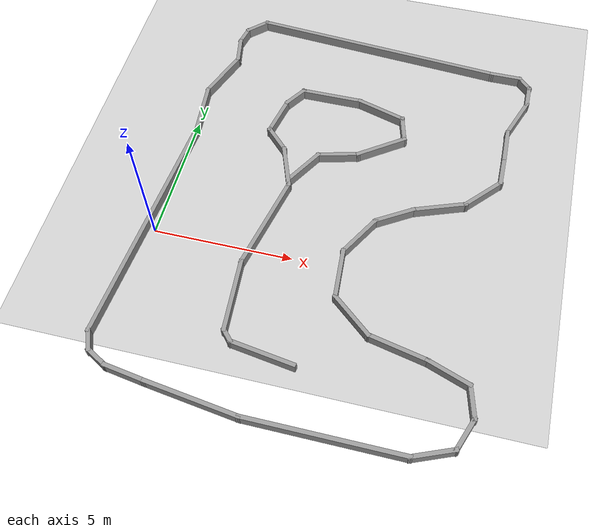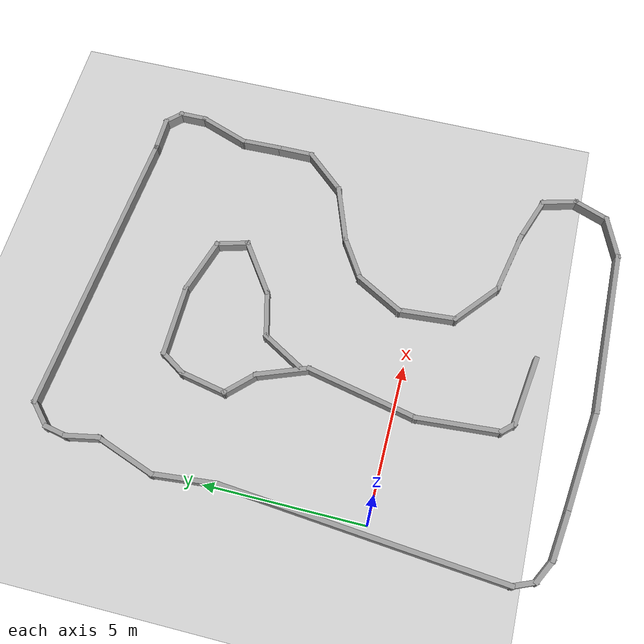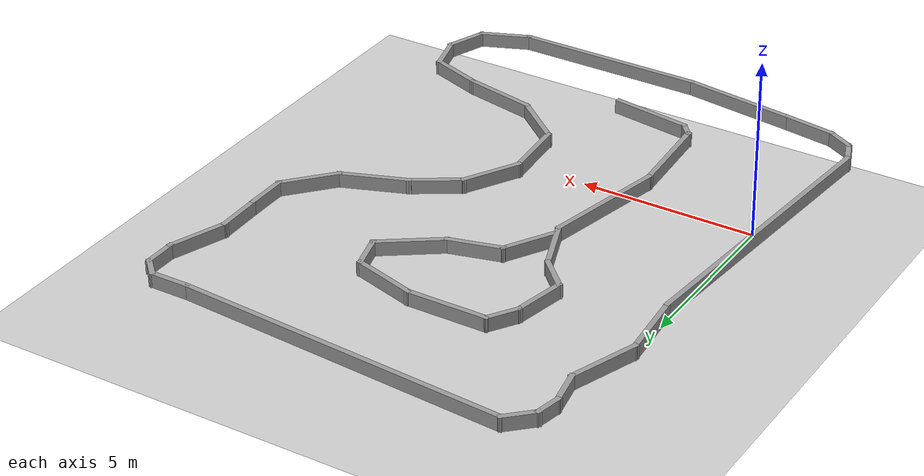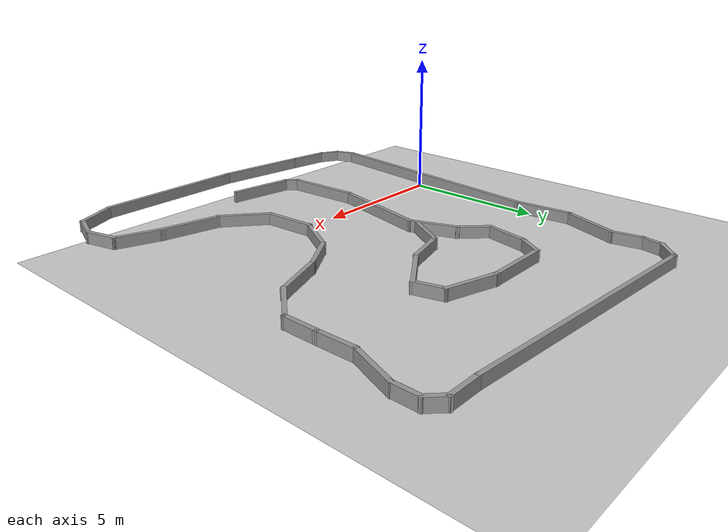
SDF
<?xml version="1.0"?>
<sdf version="1.4">
  <world name="carollo_track_v0">
    <include>
      <uri>model://selfie_description/models/f1_tenth_easy_map</uri>
      <name>track</name>
      <pose>5.74 2.33 0 0 0 0</pose>
    </include>
    <include>
      <uri>model://sun</uri>
      <pose>0 0 10 0 0 0</pose>
      <name>sun</name>
    </include>

    <include>
      <uri>model://selfie_description/models/carollo_track_v1</uri>
      <name>track</name>
      <pose>3.78 4.56 0 0 0 0</pose>
    </include>
  </world>
</sdf>

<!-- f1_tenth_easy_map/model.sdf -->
<sdf version='1.6'>
  <model name='map_low'>
    <pose frame=''>-0.64888 -0.59988 0 0 -0 0</pose>
    <link name='Wall_0'>
      <collision name='Wall_0_Collision'>
        <geometry>
          <box>
            <size>1 0.15 0.4</size>
          </box>
        </geometry>
        <pose frame=''>0 0 0.2 0 -0 0</pose>
      </collision>
      <visual name='Wall_0_Visual'>
        <pose frame=''>0 0 0.2 0 -0 0</pose>
        <geometry>
          <box>
            <size>1 0.15 0.4</size>
          </box>
        </geometry>
        <material>
          <script>
            <uri>file://media/materials/scripts/gazebo.material</uri>
            <name>Gazebo/Grey</name>
          </script>
          <ambient>1 1 1 1</ambient>
        </material>
        <meta>
          <layer>0</layer>
        </meta>
      </visual>
      <pose frame=''>6.41988 6.72488 0 0 -0 1.5708</pose>
    </link>
    <link name='Wall_1'>
      <collision name='Wall_1_Collision'>
        <geometry>
          <box>
            <size>0.75 0.15 0.4</size>
          </box>
        </geometry>
        <pose frame=''>0 0 0.2 0 -0 0</pose>
      </collision>
      <visual name='Wall_1_Visual'>
        <pose frame=''>0 0 0.2 0 -0 0</pose>
        <geometry>
          <box>
            <size>0.75 0.15 0.4</size>
          </box>
        </geometry>
        <material>
          <script>
            <uri>file://media/materials/scripts/gazebo.material</uri>
            <name>Gazebo/Grey</name>
          </script>
          <ambient>1 1 1 1</ambient>
        </material>
        <meta>
          <layer>0</layer>
        </meta>
      </visual>
      <pose frame=''>6.20788 7.36188 0 0 -0 2.35619</pose>
    </link>
    <link name='Wall_10'>
      <collision name='Wall_10_Collision'>
        <geometry>
          <box>
            <size>0.841605 0.15 0.4</size>
          </box>
        </geometry>
        <pose frame=''>0 0 0.2 0 -0 0</pose>
      </collision>
      <visual name='Wall_10_Visual'>
        <pose frame=''>0 0 0.2 0 -0 0</pose>
        <geometry>
          <box>
            <size>0.841605 0.15 0.4</size>
          </box>
        </geometry>
        <material>
          <script>
            <uri>file://media/materials/scripts/gazebo.material</uri>
            <name>Gazebo/Grey</name>
          </script>
          <ambient>1 1 1 1</ambient>
        </material>
        <meta>
          <layer>0</layer>
        </meta>
      </visual>
      <pose frame=''>-6.29512 -6.94662 0 0 0 -1.17634</pose>
    </link>
    <link name='Wall_11'>
      <collision name='Wall_11_Collision'>
        <geometry>
          <box>
            <size>0.935494 0.15 0.4</size>
          </box>
        </geometry>
        <pose frame=''>0 0 0.2 0 -0 0</pose>
      </collision>
      <visual name='Wall_11_Visual'>
        <pose frame=''>0 0 0.2 0 -0 0</pose>
        <geometry>
          <box>
            <size>0.935494 0.15 0.4</size>
          </box>
        </geometry>
        <material>
          <script>
            <uri>file://media/materials/scripts/gazebo.material</uri>
            <name>Gazebo/Grey</name>
          </script>
          <ambient>1 1 1 1</ambient>
        </material>
        <meta>
          <layer>0</layer>
        </meta>
      </visual>
      <pose frame=''>-5.81612 -7.45212 0 0 0 -0.493252</pose>
    </link>
    <link name='Wall_12'>
      <collision name='Wall_12_Collision'>
        <geometry>
          <box>
            <size>1.57578 0.15 0.4</size>
          </box>
        </geometry>
        <pose frame=''>0 0 0.2 0 -0 0</pose>
      </collision>
      <visual name='Wall_12_Visual'>
        <pose frame=''>0 0 0.2 0 -0 0</pose>
        <geometry>
          <box>
            <size>1.57578 0.15 0.4</size>
          </box>
        </geometry>
        <material>
          <script>
            <uri>file://media/materials/scripts/gazebo.material</uri>
            <name>Gazebo/Grey</name>
          </script>
          <ambient>1 1 1 1</ambient>
        </material>
        <meta>
          <layer>0</layer>
        </meta>
      </visual>
      <pose frame=''>-4.76562 -7.74462 0 0 0 -0.150035</pose>
    </link>
    <link name='Wall_13'>
      <collision name='Wall_13_Collision'>
        <geometry>
          <box>
            <size>3.39664 0.15 0.4</size>
          </box>
        </geometry>
        <pose frame=''>0 0 0.2 0 -0 0</pose>
      </collision>
      <visual name='Wall_13_Visual'>
        <pose frame=''>0 0 0.2 0 -0 0</pose>
        <geometry>
          <box>
            <size>3.39664 0.15 0.4</size>
          </box>
        </geometry>
        <material>
          <script>
            <uri>file://media/materials/scripts/gazebo.material</uri>
            <name>Gazebo/Grey</name>
          </script>
          <ambient>1 1 1 1</ambient>
        </material>
        <meta>
          <layer>0</layer>
        </meta>
      </visual>
      <pose frame=''>-2.45162 -8.06412 0 0 0 -0.131575</pose>
    </link>
    <link name='Wall_14'>
      <collision name='Wall_14_Collision'>
        <geometry>
          <box>
            <size>5.49664 0.15 0.4</size>
          </box>
        </geometry>
        <pose frame=''>0 0 0.2 0 -0 0</pose>
      </collision>
      <visual name='Wall_14_Visual'>
        <pose frame=''>0 0 0.2 0 -0 0</pose>
        <geometry>
          <box>
            <size>5.49664 0.15 0.4</size>
          </box>
        </geometry>
        <material>
          <script>
            <uri>file://media/materials/scripts/gazebo.material</uri>
            <name>Gazebo/Grey</name>
          </script>
          <ambient>1 1 1 1</ambient>
        </material>
        <meta>
          <layer>0</layer>
        </meta>
      </visual>
      <pose frame=''>1.83138 -8.27712 0 0 -0 0</pose>
    </link>
    <link name='Wall_15'>
      <collision name='Wall_15_Collision'>
        <geometry>
          <box>
            <size>1.5578 0.15 0.4</size>
          </box>
        </geometry>
        <pose frame=''>0 0 0.2 0 -0 0</pose>
      </collision>
      <visual name='Wall_15_Visual'>
        <pose frame=''>0 0 0.2 0 -0 0</pose>
        <geometry>
          <box>
            <size>1.5578 0.15 0.4</size>
          </box>
        </geometry>
        <material>
          <script>
            <uri>file://media/materials/scripts/gazebo.material</uri>
            <name>Gazebo/Grey</name>
          </script>
          <ambient>1 1 1 1</ambient>
        </material>
        <meta>
          <layer>0</layer>
        </meta>
      </visual>
      <pose frame=''>5.15638 -8.01112 0 0 -0 0.387631</pose>
    </link>
    <link name='Wall_16'>
      <collision name='Wall_16_Collision'>
        <geometry>
          <box>
            <size>1.28636 0.15 0.4</size>
          </box>
        </geometry>
        <pose frame=''>0 0 0.2 0 -0 0</pose>
      </collision>
      <visual name='Wall_16_Visual'>
        <pose frame=''>0 0 0.2 0 -0 0</pose>
        <geometry>
          <box>
            <size>1.28636 0.15 0.4</size>
          </box>
        </geometry>
        <material>
          <script>
            <uri>file://media/materials/scripts/gazebo.material</uri>
            <name>Gazebo/Grey</name>
          </script>
          <ambient>1 1 1 1</ambient>
        </material>
        <meta>
          <layer>0</layer>
        </meta>
      </visual>
      <pose frame=''>6.00738 -7.21312 0 0 -0 1.21203</pose>
    </link>
    <link name='Wall_17'>
      <collision name='Wall_17_Collision'>
        <geometry>
          <box>
            <size>1.25 0.15 0.4</size>
          </box>
        </geometry>
        <pose frame=''>0 0 0.2 0 -0 0</pose>
      </collision>
      <visual name='Wall_17_Visual'>
        <pose frame=''>0 0 0.2 0 -0 0</pose>
        <geometry>
          <box>
            <size>1.25 0.15 0.4</size>
          </box>
        </geometry>
        <material>
          <script>
            <uri>file://media/materials/scripts/gazebo.material</uri>
            <name>Gazebo/Grey</name>
          </script>
          <ambient>1 1 1 1</ambient>
        </material>
        <meta>
          <layer>0</layer>
        </meta>
      </visual>
      <pose frame=''>6.06438 -6.14962 0 0 -0 1.83275</pose>
    </link>
    <link name='Wall_18'>
      <collision name='Wall_18_Collision'>
        <geometry>
          <box>
            <size>1.68075 0.15 0.4</size>
          </box>
        </geometry>
        <pose frame=''>0 0 0.2 0 -0 0</pose>
      </collision>
      <visual name='Wall_18_Visual'>
        <pose frame=''>0 0 0.2 0 -0 0</pose>
        <geometry>
          <box>
            <size>1.68075 0.15 0.4</size>
          </box>
        </geometry>
        <material>
          <script>
            <uri>file://media/materials/scripts/gazebo.material</uri>
            <name>Gazebo/Grey</name>
          </script>
          <ambient>1 1 1 1</ambient>
        </material>
        <meta>
          <layer>0</layer>
        </meta>
      </visual>
      <pose frame=''>5.19988 -5.36462 0 0 -0 2.80393</pose>
    </link>
    <link name='Wall_19'>
      <collision name='Wall_19_Collision'>
        <geometry>
          <box>
            <size>2.21585 0.15 0.4</size>
          </box>
        </geometry>
        <pose frame=''>0 0 0.2 0 -0 0</pose>
      </collision>
      <visual name='Wall_19_Visual'>
        <pose frame=''>0 0 0.2 0 -0 0</pose>
        <geometry>
          <box>
            <size>2.21585 0.15 0.4</size>
          </box>
        </geometry>
        <material>
          <script>
            <uri>file://media/materials/scripts/gazebo.material</uri>
            <name>Gazebo/Grey</name>
          </script>
          <ambient>1 1 1 1</ambient>
        </material>
        <meta>
          <layer>0</layer>
        </meta>
      </visual>
      <pose frame=''>3.46688 -4.89862 0 0 -0 2.93442</pose>
    </link>
    <link name='Wall_2'>
      <collision name='Wall_2_Collision'>
        <geometry>
          <box>
            <size>1.25 0.15 0.4</size>
          </box>
        </geometry>
        <pose frame=''>0 0 0.2 0 -0 0</pose>
      </collision>
      <visual name='Wall_2_Visual'>
        <pose frame=''>0 0 0.2 0 -0 0</pose>
        <geometry>
          <box>
            <size>1.25 0.15 0.4</size>
          </box>
        </geometry>
        <material>
          <script>
            <uri>file://media/materials/scripts/gazebo.material</uri>
            <name>Gazebo/Grey</name>
          </script>
          <ambient>1 1 1 1</ambient>
        </material>
        <meta>
          <layer>0</layer>
        </meta>
      </visual>
      <pose frame=''>5.44588 7.57388 0 0 -0 3.14159</pose>
    </link>
    <link name='Wall_20'>
      <collision name='Wall_20_Collision'>
        <geometry>
          <box>
            <size>1.90743 0.15 0.4</size>
          </box>
        </geometry>
        <pose frame=''>0 0 0.2 0 -0 0</pose>
      </collision>
      <visual name='Wall_20_Visual'>
        <pose frame=''>0 0 0.2 0 -0 0</pose>
        <geometry>
          <box>
            <size>1.90743 0.15 0.4</size>
          </box>
        </geometry>
        <material>
          <script>
            <uri>file://media/materials/scripts/gazebo.material</uri>
            <name>Gazebo/Grey</name>
          </script>
          <ambient>1 1 1 1</ambient>
        </material>
        <meta>
          <layer>0</layer>
        </meta>
      </visual>
      <pose frame=''>1.77788 -4.12712 0 0 -0 2.4521</pose>
    </link>
    <link name='Wall_21'>
      <collision name='Wall_21_Collision'>
        <geometry>
          <box>
            <size>1.93717 0.15 0.4</size>
          </box>
        </geometry>
        <pose frame=''>0 0 0.2 0 -0 0</pose>
      </collision>
      <visual name='Wall_21_Visual'>
        <pose frame=''>0 0 0.2 0 -0 0</pose>
        <geometry>
          <box>
            <size>1.93717 0.15 0.4</size>
          </box>
        </geometry>
        <material>
          <script>
            <uri>file://media/materials/scripts/gazebo.material</uri>
            <name>Gazebo/Grey</name>
          </script>
          <ambient>1 1 1 1</ambient>
        </material>
        <meta>
          <layer>0</layer>
        </meta>
      </visual>
      <pose frame=''>1.03338 -2.67712 0 0 -0 1.64529</pose>
    </link>
    <link name='Wall_22'>
      <collision name='Wall_22_Collision'>
        <geometry>
          <box>
            <size>1.8294 0.15 0.4</size>
          </box>
        </geometry>
        <pose frame=''>0 0 0.2 0 -0 0</pose>
      </collision>
      <visual name='Wall_22_Visual'>
        <pose frame=''>0 0 0.2 0 -0 0</pose>
        <geometry>
          <box>
            <size>1.8294 0.15 0.4</size>
          </box>
        </geometry>
        <material>
          <script>
            <uri>file://media/materials/scripts/gazebo.material</uri>
            <name>Gazebo/Grey</name>
          </script>
          <ambient>1 1 1 1</ambient>
        </material>
        <meta>
          <layer>0</layer>
        </meta>
      </visual>
      <pose frame=''>1.37888 -1.05462 0 0 -0 1.05785</pose>
    </link>
    <link name='Wall_23'>
      <collision name='Wall_23_Collision'>
        <geometry>
          <box>
            <size>1.59647 0.15 0.4</size>
          </box>
        </geometry>
        <pose frame=''>0 0 0.2 0 -0 0</pose>
      </collision>
      <visual name='Wall_23_Visual'>
        <pose frame=''>0 0 0.2 0 -0 0</pose>
        <geometry>
          <box>
            <size>1.59647 0.15 0.4</size>
          </box>
        </geometry>
        <material>
          <script>
            <uri>file://media/materials/scripts/gazebo.material</uri>
            <name>Gazebo/Grey</name>
          </script>
          <ambient>1 1 1 1</ambient>
        </material>
        <meta>
          <layer>0</layer>
        </meta>
      </visual>
      <pose frame=''>2.40288 0.06238 0 0 -0 0.562117</pose>
    </link>
    <link name='Wall_24'>
      <collision name='Wall_24_Collision'>
        <geometry>
          <box>
            <size>2.05224 0.15 0.4</size>
          </box>
        </geometry>
        <pose frame=''>0 0 0.2 0 -0 0</pose>
      </collision>
      <visual name='Wall_24_Visual'>
        <pose frame=''>0 0 0.2 0 -0 0</pose>
        <geometry>
          <box>
            <size>2.05224 0.15 0.4</size>
          </box>
        </geometry>
        <material>
          <script>
            <uri>file://media/materials/scripts/gazebo.material</uri>
            <name>Gazebo/Grey</name>
          </script>
          <ambient>1 1 1 1</ambient>
        </material>
        <meta>
          <layer>0</layer>
        </meta>
      </visual>
      <pose frame=''>3.90588 0.78038 0 0 -0 0.357171</pose>
    </link>
    <link name='Wall_25'>
      <collision name='Wall_25_Collision'>
        <geometry>
          <box>
            <size>1.7891 0.15 0.4</size>
          </box>
        </geometry>
        <pose frame=''>0 0 0.2 0 -0 0</pose>
      </collision>
      <visual name='Wall_25_Visual'>
        <pose frame=''>0 0 0.2 0 -0 0</pose>
        <geometry>
          <box>
            <size>1.7891 0.15 0.4</size>
          </box>
        </geometry>
        <material>
          <script>
            <uri>file://media/materials/scripts/gazebo.material</uri>
            <name>Gazebo/Grey</name>
          </script>
          <ambient>1 1 1 1</ambient>
        </material>
        <meta>
          <layer>0</layer>
        </meta>
      </visual>
      <pose frame=''>5.34238 1.72488 0 0 -0 0.842786</pose>
    </link>
    <link name='Wall_26'>
      <collision name='Wall_26_Collision'>
        <geometry>
          <box>
            <size>1.29381 0.15 0.4</size>
          </box>
        </geometry>
        <pose frame=''>0 0 0.2 0 -0 0</pose>
      </collision>
      <visual name='Wall_26_Visual'>
        <pose frame=''>0 0 0.2 0 -0 0</pose>
        <geometry>
          <box>
            <size>1.29381 0.15 0.4</size>
          </box>
        </geometry>
        <material>
          <script>
            <uri>file://media/materials/scripts/gazebo.material</uri>
            <name>Gazebo/Grey</name>
          </script>
          <ambient>1 1 1 1</ambient>
        </material>
        <meta>
          <layer>0</layer>
        </meta>
      </visual>
      <pose frame=''>5.88788 2.90888 0 0 -0 1.5708</pose>
    </link>
    <link name='Wall_27'>
      <collision name='Wall_27_Collision'>
        <geometry>
          <box>
            <size>1.42709 0.15 0.4</size>
          </box>
        </geometry>
        <pose frame=''>0 0 0.2 0 -0 0</pose>
      </collision>
      <visual name='Wall_27_Visual'>
        <pose frame=''>0 0 0.2 0 -0 0</pose>
        <geometry>
          <box>
            <size>1.42709 0.15 0.4</size>
          </box>
        </geometry>
        <material>
          <script>
            <uri>file://media/materials/scripts/gazebo.material</uri>
            <name>Gazebo/Grey</name>
          </script>
          <ambient>1 1 1 1</ambient>
        </material>
        <meta>
          <layer>0</layer>
        </meta>
      </visual>
      <pose frame=''>5.87438 4.11888 0 0 -0 1.59195</pose>
    </link>
    <link name='Wall_28'>
      <collision name='Wall_28_Collision'>
        <geometry>
          <box>
            <size>1.79082 0.15 0.4</size>
          </box>
        </geometry>
        <pose frame=''>0 0 0.2 0 -0 0</pose>
      </collision>
      <visual name='Wall_28_Visual'>
        <pose frame=''>0 0 0.2 0 -0 0</pose>
        <geometry>
          <box>
            <size>1.79082 0.15 0.4</size>
          </box>
        </geometry>
        <material>
          <script>
            <uri>file://media/materials/scripts/gazebo.material</uri>
            <name>Gazebo/Grey</name>
          </script>
          <ambient>1 1 1 1</ambient>
        </material>
        <meta>
          <layer>0</layer>
        </meta>
      </visual>
      <pose frame=''>6.14038 5.52838 0 0 -0 1.22322</pose>
    </link>
    <link name='Wall_3'>
      <collision name='Wall_3_Collision'>
        <geometry>
          <box>
            <size>9.66358 0.15 0.4</size>
          </box>
        </geometry>
        <pose frame=''>0 0 0.2 0 -0 0</pose>
      </collision>
      <visual name='Wall_3_Visual'>
        <pose frame=''>0 0 0.2 0 -0 0</pose>
        <geometry>
          <box>
            <size>9.66358 0.15 0.4</size>
          </box>
        </geometry>
        <material>
          <script>
            <uri>file://media/materials/scripts/gazebo.material</uri>
            <name>Gazebo/Grey</name>
          </script>
          <ambient>1 1 1 1</ambient>
        </material>
        <meta>
          <layer>0</layer>
        </meta>
      </visual>
      <pose frame=''>0.15138 7.92138 0 0 -0 3.06848</pose>
    </link>
    <link name='Wall_30'>
      <collision name='Wall_30_Collision'>
        <geometry>
          <box>
            <size>1.62817 0.15 0.4</size>
          </box>
        </geometry>
        <pose frame=''>0 0 0.2 0 -0 0</pose>
      </collision>
      <visual name='Wall_30_Visual'>
        <pose frame=''>0 0 0.2 0 -0 0</pose>
        <geometry>
          <box>
            <size>1.62817 0.15 0.4</size>
          </box>
        </geometry>
        <material>
          <script>
            <uri>file://media/materials/scripts/gazebo.material</uri>
            <name>Gazebo/Grey</name>
          </script>
          <ambient>1 1 1 1</ambient>
        </material>
        <meta>
          <layer>0</layer>
        </meta>
      </visual>
      <pose frame=''>-1.24112 1.40538 0 0 -0 1.04326</pose>
    </link>
    <link name='Wall_31'>
      <collision name='Wall_31_Collision'>
        <geometry>
          <box>
            <size>1.6339 0.15 0.4</size>
          </box>
        </geometry>
        <pose frame=''>0 0 0.2 0 -0 0</pose>
      </collision>
      <visual name='Wall_31_Visual'>
        <pose frame=''>0 0 0.2 0 -0 0</pose>
        <geometry>
          <box>
            <size>1.6339 0.15 0.4</size>
          </box>
        </geometry>
        <material>
          <script>
            <uri>file://media/materials/scripts/gazebo.material</uri>
            <name>Gazebo/Grey</name>
          </script>
          <ambient>1 1 1 1</ambient>
        </material>
        <meta>
          <layer>0</layer>
        </meta>
      </visual>
      <pose frame=''>-0.15062 2.23038 0 0 -0 0.253964</pose>
    </link>
    <link name='Wall_32'>
      <collision name='Wall_32_Collision'>
        <geometry>
          <box>
            <size>2.03936 0.15 0.4</size>
          </box>
        </geometry>
        <pose frame=''>0 0 0.2 0 -0 0</pose>
      </collision>
      <visual name='Wall_32_Visual'>
        <pose frame=''>0 0 0.2 0 -0 0</pose>
        <geometry>
          <box>
            <size>2.03936 0.15 0.4</size>
          </box>
        </geometry>
        <material>
          <script>
            <uri>file://media/materials/scripts/gazebo.material</uri>
            <name>Gazebo/Grey</name>
          </script>
          <ambient>1 1 1 1</ambient>
        </material>
        <meta>
          <layer>0</layer>
        </meta>
      </visual>
      <pose frame=''>1.33938 2.96188 0 0 -0 0.615019</pose>
    </link>
    <link name='Wall_33'>
      <collision name='Wall_33_Collision'>
        <geometry>
          <box>
            <size>1.14386 0.15 0.4</size>
          </box>
        </geometry>
        <pose frame=''>0 0 0.2 0 -0 0</pose>
      </collision>
      <visual name='Wall_33_Visual'>
        <pose frame=''>0 0 0.2 0 -0 0</pose>
        <geometry>
          <box>
            <size>1.14386 0.15 0.4</size>
          </box>
        </geometry>
        <material>
          <script>
            <uri>file://media/materials/scripts/gazebo.material</uri>
            <name>Gazebo/Grey</name>
          </script>
          <ambient>1 1 1 1</ambient>
        </material>
        <meta>
          <layer>0</layer>
        </meta>
      </visual>
      <pose frame=''>1.97788 3.98588 0 0 -0 1.84163</pose>
    </link>
    <link name='Wall_34'>
      <collision name='Wall_34_Collision'>
        <geometry>
          <box>
            <size>1.97691 0.15 0.4</size>
          </box>
        </geometry>
        <pose frame=''>0 0 0.2 0 -0 0</pose>
      </collision>
      <visual name='Wall_34_Visual'>
        <pose frame=''>0 0 0.2 0 -0 0</pose>
        <geometry>
          <box>
            <size>1.97691 0.15 0.4</size>
          </box>
        </geometry>
        <material>
          <script>
            <uri>file://media/materials/scripts/gazebo.material</uri>
            <name>Gazebo/Grey</name>
          </script>
          <ambient>1 1 1 1</ambient>
        </material>
        <meta>
          <layer>0</layer>
        </meta>
      </visual>
      <pose frame=''>0.96688 4.71738 0 0 -0 2.86156</pose>
    </link>
    <link name='Wall_35'>
      <collision name='Wall_35_Collision'>
        <geometry>
          <box>
            <size>2.41102 0.15 0.4</size>
          </box>
        </geometry>
        <pose frame=''>0 0 0.2 0 -0 0</pose>
      </collision>
      <visual name='Wall_35_Visual'>
        <pose frame=''>0 0 0.2 0 -0 0</pose>
        <geometry>
          <box>
            <size>2.41102 0.15 0.4</size>
          </box>
        </geometry>
        <material>
          <script>
            <uri>file://media/materials/scripts/gazebo.material</uri>
            <name>Gazebo/Grey</name>
          </script>
          <ambient>1 1 1 1</ambient>
        </material>
        <meta>
          <layer>0</layer>
        </meta>
      </visual>
      <pose frame=''>-1.04162 4.96988 0 0 -0 3.14159</pose>
    </link>
    <link name='Wall_36'>
      <collision name='Wall_36_Collision'>
        <geometry>
          <box>
            <size>1.03543 0.15 0.4</size>
          </box>
        </geometry>
        <pose frame=''>0 0 0.2 0 -0 0</pose>
      </collision>
      <visual name='Wall_36_Visual'>
        <pose frame=''>0 0 0.2 0 -0 0</pose>
        <geometry>
          <box>
            <size>1.03543 0.15 0.4</size>
          </box>
        </geometry>
        <material>
          <script>
            <uri>file://media/materials/scripts/gazebo.material</uri>
            <name>Gazebo/Grey</name>
          </script>
          <ambient>1 1 1 1</ambient>
        </material>
        <meta>
          <layer>0</layer>
        </meta>
      </visual>
      <pose frame=''>-2.41162 4.59738 0 0 0 -2.1422</pose>
    </link>
    <link name='Wall_37'>
      <collision name='Wall_37_Collision'>
        <geometry>
          <box>
            <size>1.61591 0.15 0.4</size>
          </box>
        </geometry>
        <pose frame=''>0 0 0.2 0 -0 0</pose>
      </collision>
      <visual name='Wall_37_Visual'>
        <pose frame=''>0 0 0.2 0 -0 0</pose>
        <geometry>
          <box>
            <size>1.61591 0.15 0.4</size>
          </box>
        </geometry>
        <material>
          <script>
            <uri>file://media/materials/scripts/gazebo.material</uri>
            <name>Gazebo/Grey</name>
          </script>
          <ambient>1 1 1 1</ambient>
        </material>
        <meta>
          <layer>0</layer>
        </meta>
      </visual>
      <pose frame=''>-2.79712 3.50688 0 0 0 -1.7714</pose>
    </link>
    <link name='Wall_38'>
      <collision name='Wall_38_Collision'>
        <geometry>
          <box>
            <size>1.24093 0.15 0.4</size>
          </box>
        </geometry>
        <pose frame=''>0 0 0.2 0 -0 0</pose>
      </collision>
      <visual name='Wall_38_Visual'>
        <pose frame=''>0 0 0.2 0 -0 0</pose>
        <geometry>
          <box>
            <size>1.24093 0.15 0.4</size>
          </box>
        </geometry>
        <material>
          <script>
            <uri>file://media/materials/scripts/gazebo.material</uri>
            <name>Gazebo/Grey</name>
          </script>
          <ambient>1 1 1 1</ambient>
        </material>
        <meta>
          <layer>0</layer>
        </meta>
      </visual>
      <pose frame=''>-2.55762 2.40338 0 0 0 -0.785398</pose>
    </link>
    <link name='Wall_39'>
      <collision name='Wall_39_Collision'>
        <geometry>
          <box>
            <size>1.80007 0.15 0.4</size>
          </box>
        </geometry>
        <pose frame=''>0 0 0.2 0 -0 0</pose>
      </collision>
      <visual name='Wall_39_Visual'>
        <pose frame=''>0 0 0.2 0 -0 0</pose>
        <geometry>
          <box>
            <size>1.80007 0.15 0.4</size>
          </box>
        </geometry>
        <material>
          <script>
            <uri>file://media/materials/scripts/gazebo.material</uri>
            <name>Gazebo/Grey</name>
          </script>
          <ambient>1 1 1 1</ambient>
        </material>
        <meta>
          <layer>0</layer>
        </meta>
      </visual>
      <pose frame=''>-1.87962 1.24638 0 0 0 -1.20841</pose>
    </link>
    <link name='Wall_4'>
      <collision name='Wall_4_Collision'>
        <geometry>
          <box>
            <size>1.03423 0.15 0.4</size>
          </box>
        </geometry>
        <pose frame=''>0 0 0.2 0 -0 0</pose>
      </collision>
      <visual name='Wall_4_Visual'>
        <pose frame=''>0 0 0.2 0 -0 0</pose>
        <geometry>
          <box>
            <size>1.03423 0.15 0.4</size>
          </box>
        </geometry>
        <material>
          <script>
            <uri>file://media/materials/scripts/gazebo.material</uri>
            <name>Gazebo/Grey</name>
          </script>
          <ambient>1 1 1 1</ambient>
        </material>
        <meta>
          <layer>0</layer>
        </meta>
      </visual>
      <pose frame=''>-4.91212 7.96288 0 0 0 -2.37699</pose>
    </link>
    <link name='Wall_40'>
      <collision name='Wall_40_Collision'>
        <geometry>
          <box>
            <size>3.71333 0.15 0.4</size>
          </box>
        </geometry>
        <pose frame=''>0 0 0.2 0 -0 0</pose>
      </collision>
      <visual name='Wall_40_Visual'>
        <pose frame=''>0 0 0.2 0 -0 0</pose>
        <geometry>
          <box>
            <size>3.71333 0.15 0.4</size>
          </box>
        </geometry>
        <material>
          <script>
            <uri>file://media/materials/scripts/gazebo.material</uri>
            <name>Gazebo/Grey</name>
          </script>
          <ambient>1 1 1 1</ambient>
        </material>
        <meta>
          <layer>0</layer>
        </meta>
      </visual>
      <pose frame=''>-1.95962 -1.26762 0 0 0 -1.7814</pose>
    </link>
    <link name='Wall_41'>
      <collision name='Wall_41_Collision'>
        <geometry>
          <box>
            <size>2.73693 0.15 0.4</size>
          </box>
        </geometry>
        <pose frame=''>0 0 0.2 0 -0 0</pose>
      </collision>
      <visual name='Wall_41_Visual'>
        <pose frame=''>0 0 0.2 0 -0 0</pose>
        <geometry>
          <box>
            <size>2.73693 0.15 0.4</size>
          </box>
        </geometry>
        <material>
          <script>
            <uri>file://media/materials/scripts/gazebo.material</uri>
            <name>Gazebo/Grey</name>
          </script>
          <ambient>1 1 1 1</ambient>
        </material>
        <meta>
          <layer>0</layer>
        </meta>
      </visual>
      <pose frame=''>-2.23862 -4.30012 0 0 0 -1.49844</pose>
    </link>
    <link name='Wall_42'>
      <collision name='Wall_42_Collision'>
        <geometry>
          <box>
            <size>0.620606 0.15 0.4</size>
          </box>
        </geometry>
        <pose frame=''>0 0 0.2 0 -0 0</pose>
      </collision>
      <visual name='Wall_42_Visual'>
        <pose frame=''>0 0 0.2 0 -0 0</pose>
        <geometry>
          <box>
            <size>0.620606 0.15 0.4</size>
          </box>
        </geometry>
        <material>
          <script>
            <uri>file://media/materials/scripts/gazebo.material</uri>
            <name>Gazebo/Grey</name>
          </script>
          <ambient>1 1 1 1</ambient>
        </material>
        <meta>
          <layer>0</layer>
        </meta>
      </visual>
      <pose frame=''>-1.98562 -5.76312 0 0 0 -0.825977</pose>
    </link>
    <link name='Wall_43'>
      <collision name='Wall_43_Collision'>
        <geometry>
          <box>
            <size>2.38077 0.15 0.4</size>
          </box>
        </geometry>
        <pose frame=''>0 0 0.2 0 -0 0</pose>
      </collision>
      <visual name='Wall_43_Visual'>
        <pose frame=''>0 0 0.2 0 -0 0</pose>
        <geometry>
          <box>
            <size>2.38077 0.15 0.4</size>
          </box>
        </geometry>
        <material>
          <script>
            <uri>file://media/materials/scripts/gazebo.material</uri>
            <name>Gazebo/Grey</name>
          </script>
          <ambient>1 1 1 1</ambient>
        </material>
        <meta>
          <layer>0</layer>
        </meta>
      </visual>
      <pose frame=''>-0.72212 -6.09562 0 0 0 -0.143482</pose>
    </link>
    <link name='Wall_5'>
      <collision name='Wall_5_Collision'>
        <geometry>
          <box>
            <size>0.82817 0.15 0.4</size>
          </box>
        </geometry>
        <pose frame=''>0 0 0.2 0 -0 0</pose>
      </collision>
      <visual name='Wall_5_Visual'>
        <pose frame=''>0 0 0.2 0 -0 0</pose>
        <geometry>
          <box>
            <size>0.82817 0.15 0.4</size>
          </box>
        </geometry>
        <material>
          <script>
            <uri>file://media/materials/scripts/gazebo.material</uri>
            <name>Gazebo/Grey</name>
          </script>
          <ambient>1 1 1 1</ambient>
        </material>
        <meta>
          <layer>0</layer>
        </meta>
      </visual>
      <pose frame=''>-5.29762 7.32438 0 0 0 -1.76819</pose>
    </link>
    <link name='Wall_6'>
      <collision name='Wall_6_Collision'>
        <geometry>
          <box>
            <size>1.15202 0.15 0.4</size>
          </box>
        </geometry>
        <pose frame=''>0 0 0.2 0 -0 0</pose>
      </collision>
      <visual name='Wall_6_Visual'>
        <pose frame=''>0 0 0.2 0 -0 0</pose>
        <geometry>
          <box>
            <size>1.15202 0.15 0.4</size>
          </box>
        </geometry>
        <material>
          <script>
            <uri>file://media/materials/scripts/gazebo.material</uri>
            <name>Gazebo/Grey</name>
          </script>
          <ambient>1 1 1 1</ambient>
        </material>
        <meta>
          <layer>0</layer>
        </meta>
      </visual>
      <pose frame=''>-5.27112 6.49988 0 0 0 -1.38398</pose>
    </link>
    <link name='Wall_7'>
      <collision name='Wall_7_Collision'>
        <geometry>
          <box>
            <size>2.1275 0.15 0.4</size>
          </box>
        </geometry>
        <pose frame=''>0 0 0.2 0 -0 0</pose>
      </collision>
      <visual name='Wall_7_Visual'>
        <pose frame=''>0 0 0.2 0 -0 0</pose>
        <geometry>
          <box>
            <size>2.1275 0.15 0.4</size>
          </box>
        </geometry>
        <material>
          <script>
            <uri>file://media/materials/scripts/gazebo.material</uri>
            <name>Gazebo/Grey</name>
          </script>
          <ambient>1 1 1 1</ambient>
        </material>
        <meta>
          <layer>0</layer>
        </meta>
      </visual>
      <pose frame=''>-5.51062 5.07688 0 0 0 -1.91382</pose>
    </link>
    <link name='Wall_8'>
      <collision name='Wall_8_Collision'>
        <geometry>
          <box>
            <size>2.1272 0.15 0.4</size>
          </box>
        </geometry>
        <pose frame=''>0 0 0.2 0 -0 0</pose>
      </collision>
      <visual name='Wall_8_Visual'>
        <pose frame=''>0 0 0.2 0 -0 0</pose>
        <geometry>
          <box>
            <size>2.1272 0.15 0.4</size>
          </box>
        </geometry>
        <material>
          <script>
            <uri>file://media/materials/scripts/gazebo.material</uri>
            <name>Gazebo/Grey</name>
          </script>
          <ambient>1 1 1 1</ambient>
        </material>
        <meta>
          <layer>0</layer>
        </meta>
      </visual>
      <pose frame=''>-5.75012 3.16138 0 0 0 -1.47661</pose>
    </link>
    <link name='Wall_9'>
      <collision name='Wall_9_Collision'>
        <geometry>
          <box>
            <size>8.98839 0.15 0.4</size>
          </box>
        </geometry>
        <pose frame=''>0 0 0.2 0 -0 0</pose>
      </collision>
      <visual name='Wall_9_Visual'>
        <pose frame=''>0 0 0.2 0 -0 0</pose>
        <geometry>
          <box>
            <size>8.98839 0.15 0.4</size>
          </box>
        </geometry>
        <material>
          <script>
            <uri>file://media/materials/scripts/gazebo.material</uri>
            <name>Gazebo/Grey</name>
          </script>
          <ambient>1 1 1 1</ambient>
        </material>
        <meta>
          <layer>0</layer>
        </meta>
      </visual>
      <pose frame=''>-6.04262 -2.22512 0 0 0 -1.65815</pose>
    </link>
    <static>1</static>
  </model>
</sdf>

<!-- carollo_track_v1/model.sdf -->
<sdf version="1.4">
  <model name="basic_track_ground_plane">
    <static>true</static>
    <link name="track">
      <collision name="collision">
        <geometry>
          <plane>
            <normal> 0 0 1</normal>
            <size>20.966 18.3</size>
          </plane>
        </geometry>
        <surface>
          <friction>
            <ode>
              <mu>100</mu>
              <mu2>50</mu2>
            </ode>
          </friction>
         </surface>
      </collision>
      <visual name="visual">
        <cast_shadows>false</cast_shadows>
        <geometry>
          <plane>
            <normal>0 0 1</normal>
            <size>20.966 18.3</size>
          </plane>
        </geometry>
        <material>
          <script>
            <uri>model://selfie_description/models/carollo_track_v1/materials/scripts</uri>
            <uri>model://selfie_description/models/carollo_track_v1/materials/textures</uri>
            <name>basic_track/Image</name>
          </script>
        </material>
      </visual>
    </link>
  </model>
</sdf>
